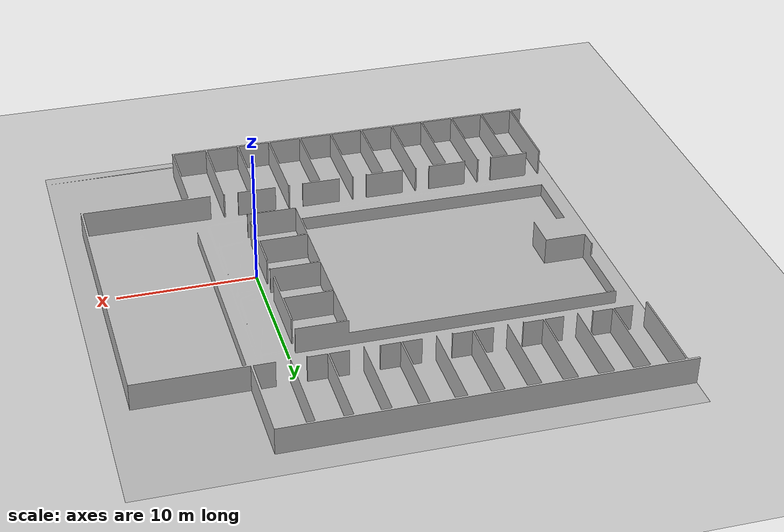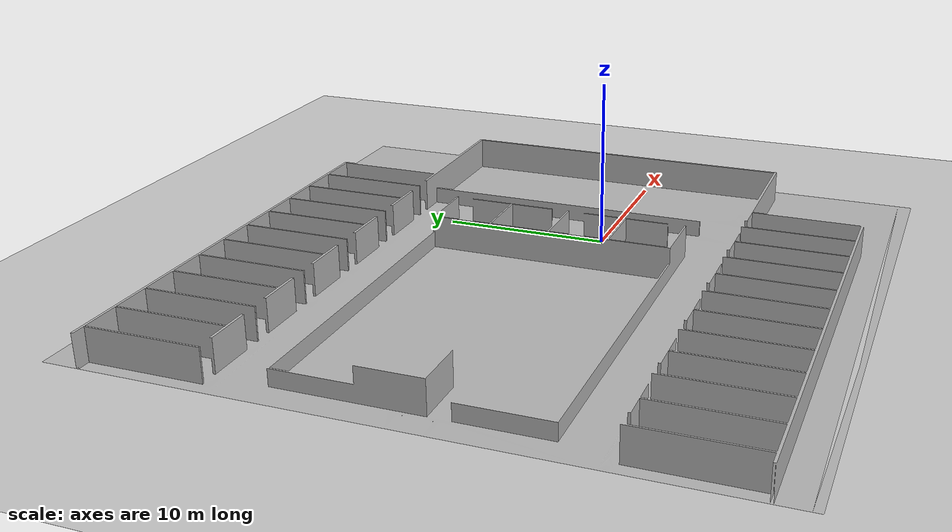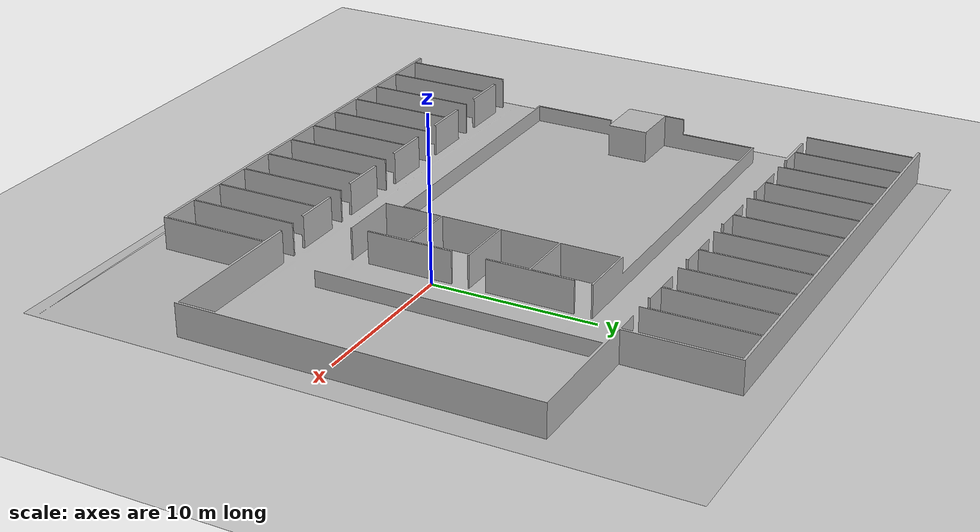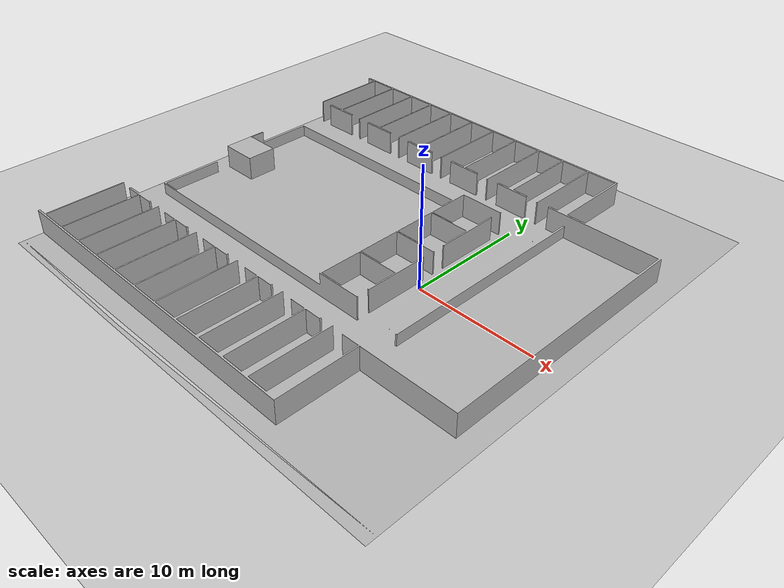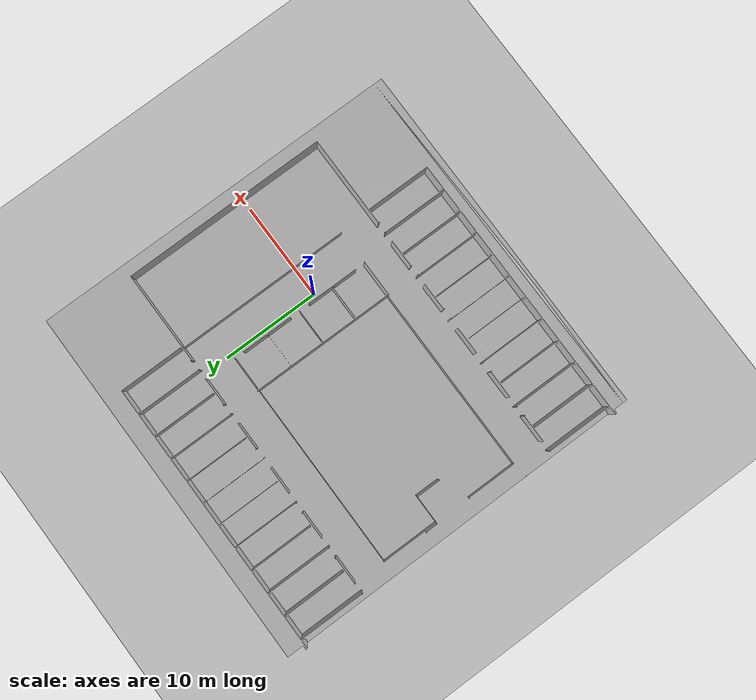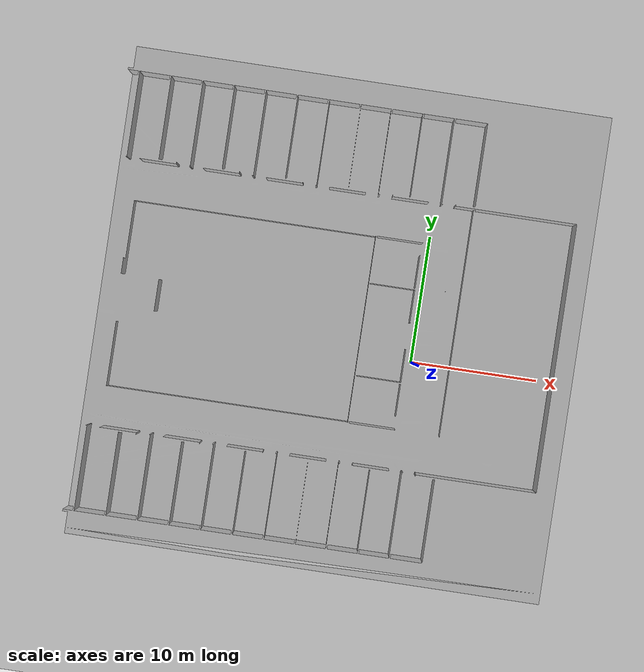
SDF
<?xml version="1.0"?>
<sdf version="1.4">
  <world name="default">
    <gui>
      <camera name="user_camera">
        <pose>13 -8 12 0 0.639 2.532</pose>
      </camera>
    </gui>
    <include>
        <uri>model://ground_plane</uri>
    </include>
    <include>
        <uri>model://sun</uri>
    </include>
    <model name="Pseudo Hospital">
      <pose>-28 0.0 -0.02 0 -0 3.14</pose>
      <static>true</static>
      <link name="body">
        <collision name="collision">
          <geometry>
            <mesh><uri>model://hospital/hospital.dae</uri></mesh>
          </geometry>
        </collision>
        <visual name="visual">
          <geometry>
            <mesh><uri>model://hospital/hospital.dae</uri></mesh>
          </geometry>
        </visual>
      </link>
    </model>
  </world>
</sdf>
